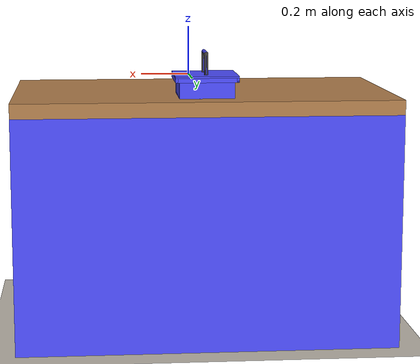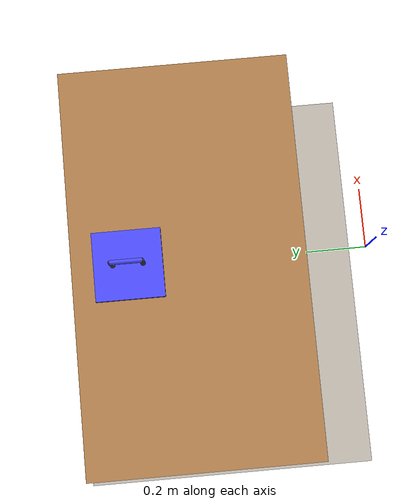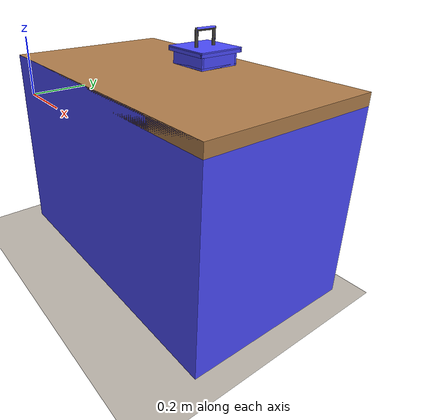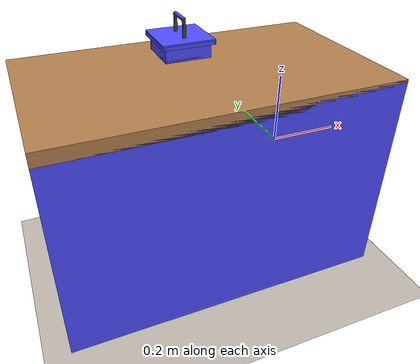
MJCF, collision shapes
<mujoco model="box">
    <include file="assets/box_dependencies.xml"/>
    <include file="../scene/basic_scene.xml"/>
    <worldbody>
        <body pos="0 0.8 0">
            <include file="assets/box.xml"/>
        </body>
        <body pos="0 0.8 0">
            <freejoint/>
            <include file="assets/boxtop.xml"/>
        </body>
    </worldbody>
</mujoco>

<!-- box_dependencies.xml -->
<mujocoinclude>
    <compiler angle="radian" inertiafromgeom="auto" inertiagrouprange="4 5"/>
    <asset>
        <texture name="T_boxmetal" type="cube" file="../textures/metal1.png"/>
        <texture name="T_boxwood" type="cube" file="../textures/wood1.png"/>
      <material name="box_col" rgba="0.3 0.3 1.0 0.5" shininess="0" specular="0"/>
      <material name="box_red" rgba=".8 0 0 1" shininess="1" reflectance=".7" specular=".5"/>
      <material name="box_blue" rgba="0 0 .8 1" shininess="1" reflectance=".7" specular=".5"/>
      <material name="box_metal" rgba=".35 .35 .35 1" texture="T_boxmetal" shininess="1" reflectance=".7" specular=".5"/>
      <material name="box_wood" texture="T_boxwood" shininess="1" reflectance=".7" specular=".5"/>
    </asset>
    <default>
      <default class="box_base">
          <joint armature="0.001" damping="2" limited="true"/>
          <geom conaffinity="0" contype="0" group="1" type="mesh"/>
          <default class="box_viz">
              <geom condim="4" type="mesh"/>
          </default>
          <default class="box_col">
              <geom conaffinity="1" condim="3" contype="0" group="4" material="box_col" solimp="0.99 0.99 0.01" solref="0.01 1"/>
          </default>
          <default class="top_col">
              <geom conaffinity="1" condim="4" contype="1" group="4" material="box_col" solimp="0.99 0.99 0.01" solref="0.01 1"/>
          </default>
      </default>
    </default>

    <asset>
        <mesh file="../objects/meshes/bin/bin.stl" name="bin"/>
        <mesh file="../objects/meshes/box/boxtop.stl" name="boxtop"/>
        <mesh file="../objects/meshes/box/boxhandle.stl" name="boxhandle"/>
    </asset>

</mujocoinclude>

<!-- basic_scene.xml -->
<mujocoinclude>
  <option timestep='0.002' iterations="50" tolerance="1e-10" solver="Newton" jacobian="dense" cone="elliptic" mpr_iterations="1000" mpr_tolerance="1e-8"/>

  <asset>
    <!-- night sky -->
     <texture type="skybox" builtin="gradient" rgb1=".50 .495 .48" rgb2=".50 .495 .48" width="32" height="32"/>
     <texture name="T_table" type="cube" file="../textures/wood2.png"/>
     <texture name="T_floor" type="2d" file="../textures/floor2.png"/>

     <material name="basic_floor" texture="T_floor" texrepeat="12 12" shininess=".3" specular="0.5" reflectance="0.2"/>
     <material name="table_wood" texture="T_table" shininess=".3" specular="0.5"/>
      <!--material name="table_wood" rgba="1 1 1 1" shininess=".3" specular="0.5"/-->
     <material name="table_col" rgba="0.3 0.3 1.0 0.5" shininess="0" specular="0"/>

     <mesh file="../objects/meshes/table/tablebody.stl" name="tablebody" scale="1 1 1"/>
     <mesh file="../objects/meshes/table/tabletop.stl" name="tabletop" scale="1 1 1"/>
  </asset>

  <visual>
      <map fogstart="1.5" fogend="5" force="0.1" znear="0.1"/>
      <quality shadowsize ="4096" offsamples="4"/>

      <headlight ambient="0.4 0.4 0.4"/>

  </visual>

  <worldbody>
      <light castshadow="false" directional='true' diffuse='.3 .3 .3' specular='0.3 0.3 0.3' pos='-1 -1 1' dir='1 1 -1'/>
      <light directional='true' diffuse='.3 .3 .3' specular='0.3 0.3 0.3' pos='1 -1 1' dir='-1 1 -1'/>
      <light castshadow="false" directional='true' diffuse='.3 .3 .3' specular='0.3 0.3 0.3' pos='0 1 1' dir='0 -1 -1'/>
      <body name="tablelink" pos="0 .6 0">
        <geom material="table_wood" group="1" type="box" size=".7 .4 .027" pos="0 0 -.027" conaffinity="0" contype="0"/>
        <geom material="table_wood" group="1" mesh="tablebody" pos="0 0 -0.65" type="mesh" conaffinity="0" contype="0"/>
        <geom material="table_col" group="4" pos="0.0 0.0 -0.46" size="0.7 0.4 0.46" type="box" conaffinity="1" contype="0"/>
      </body>

      <geom name="floor" size="4 4 .1" pos="0 0 -.913" conaffinity="1" contype="1" type="plane" material="basic_floor" condim="3"/>

  </worldbody>

</mujocoinclude>

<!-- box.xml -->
<mujocoinclude>
    <body childclass="box_base" name="box">
        <geom material="box_wood" mesh="bin" pos="0 0 0.03"/>
        <geom class="box_col" pos="0 -0.095 0.03" size="0.1 0.005 0.03" type="box" mass=".03"/>
        <geom class="box_col" pos="0 0.095 0.03" size="0.1 0.005 0.03" type="box" mass=".03"/>
        <geom class="box_col" pos="0.095 0 0.03" size="0.005 0.09 0.03" type="box" mass=".03"/>
        <geom class="box_col" pos="-0.095 0 0.03" size="0.005 0.09 0.03" type="box" mass=".03"/>
        <geom class="box_col" pos="0 0 0.005" size="0.1 0.1 0.005" type="box" mass=".03"/>
    </body>

</mujocoinclude>

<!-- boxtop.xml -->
<mujocoinclude>

    <body name="top_link" pos="0 0 0.075">
        <geom material="box_wood" mesh="boxtop" pos="0 0 -0.005" type="mesh"/>
        <geom material="box_metal" euler="1.57 0 0" mesh="boxhandle" pos="0 0 0.082" type="mesh" name="BoxHandleGeom"/>
        <geom class="top_col" pos="0.11 -0.0 -0.008" size="0.005 0.115 0.008" type="box" mass=".02"/>
        <geom class="top_col" pos="0.0 -0.0 0.003" size="0.115 0.115 0.003" type="box" mass=".02"/>
        <geom class="top_col" pos="-0.11 -0.0 -0.008" size="0.005 0.115 0.008" type="box" mass=".02"/>
        <geom class="top_col" pos="0.0 -0.11 -0.008" size="0.115 0.005 0.008" type="box" mass=".02"/>
        <geom class="top_col" pos="0.0 0.11 -0.008" size="0.115 0.005 0.008" type="box" mass=".02"/>
        <geom class="top_col" euler="1.57 0.0 0.0" pos="0 0 0.082" size="0.008 0.05" type="capsule" mass=".05"/>
        <geom class="top_col" pos="0 -0.05 0.043" size="0.008 0.035" type="capsule" mass=".05"/>
        <geom class="top_col" pos="0 0.05 0.043" size="0.008 0.035" type="capsule" mass=".05"/>
    </body>
</mujocoinclude>
